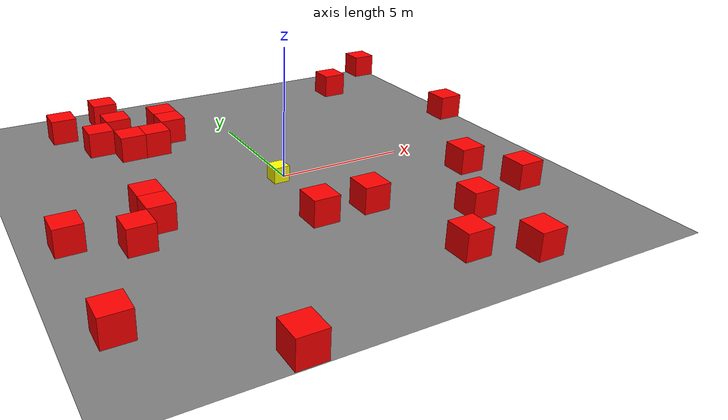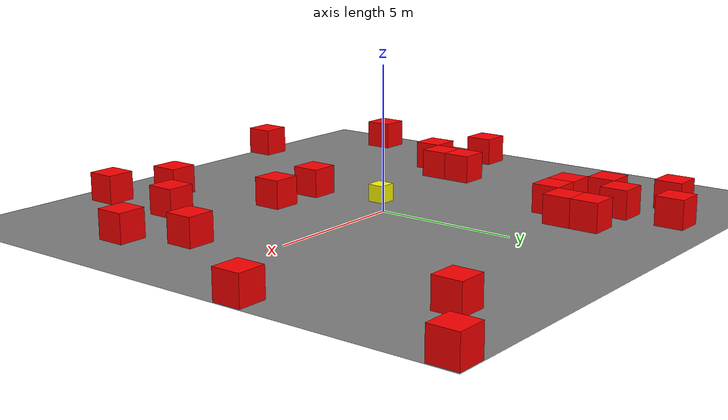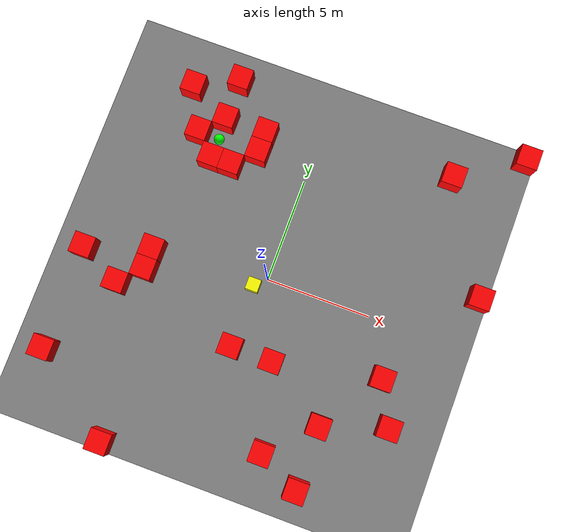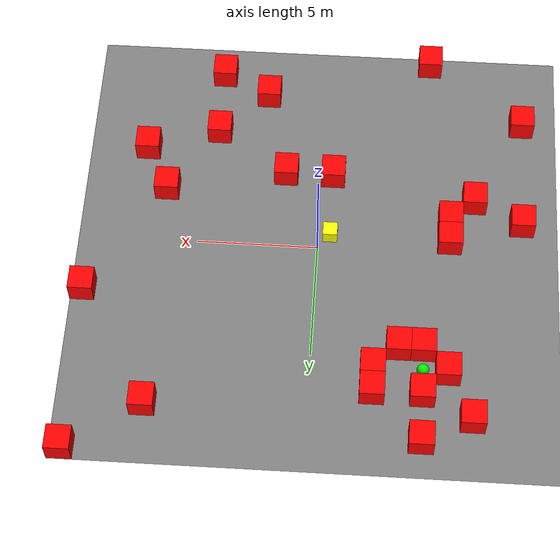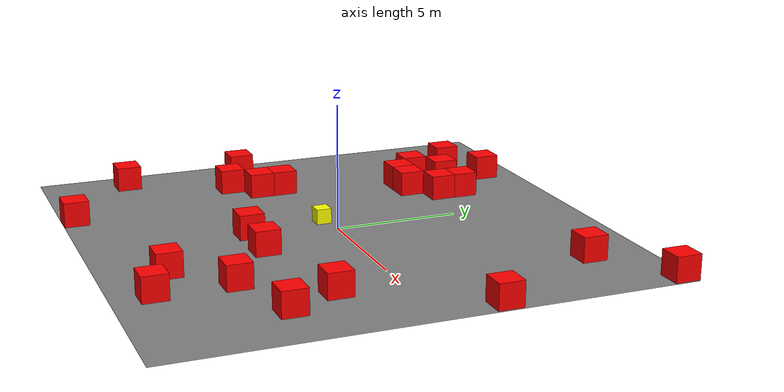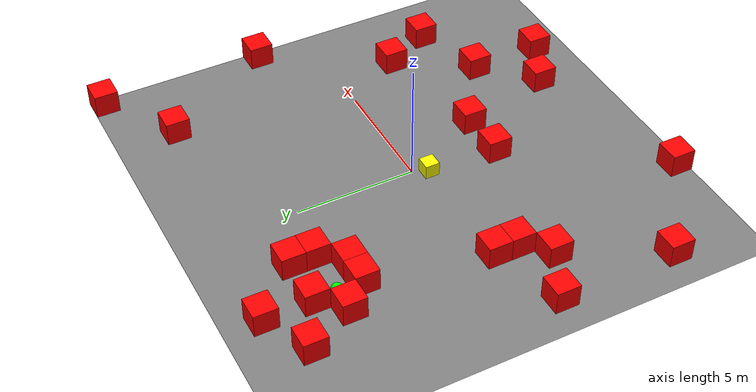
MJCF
<mujoco model="hybrid_20x20_wMin20_wMax40_deadD3_aaMin5_ttMin3_atMin10_seed7">
  <option timestep="0.01"/>

  <worldbody>
    <geom name="floor" type="plane" size="10.0 10.0 0.1" rgba="0.5 0.5 0.5 1"/>

    <body name="ob_0_19" pos="9.5000 9.5000 0.500">  <geom type="box" size="0.5000 0.5000 0.500"         rgba="1 0 0 1" contype="1" conaffinity="1"/></body>
        <body name="ob_1_5" pos="-4.5000 8.5000 0.500">  <geom type="box" size="0.5000 0.5000 0.500"         rgba="1 0 0 1" contype="1" conaffinity="1"/></body>
        <body name="ob_2_3" pos="-6.5000 7.5000 0.500">  <geom type="box" size="0.5000 0.5000 0.500"         rgba="1 0 0 1" contype="1" conaffinity="1"/></body>
        <body name="ob_2_16" pos="6.5000 7.5000 0.500">  <geom type="box" size="0.5000 0.5000 0.500"         rgba="1 0 0 1" contype="1" conaffinity="1"/></body>
        <body name="ob_3_5" pos="-4.5000 6.5000 0.500">  <geom type="box" size="0.5000 0.5000 0.500"         rgba="1 0 0 1" contype="1" conaffinity="1"/></body>
        <body name="ob_3_7" pos="-2.5000 6.5000 0.500">  <geom type="box" size="0.5000 0.5000 0.500"         rgba="1 0 0 1" contype="1" conaffinity="1"/></body>
        <body name="ob_4_4" pos="-5.5000 5.5000 0.500">  <geom type="box" size="0.5000 0.5000 0.500"         rgba="1 0 0 1" contype="1" conaffinity="1"/></body>
        <body name="ob_4_7" pos="-2.5000 5.5000 0.500">  <geom type="box" size="0.5000 0.5000 0.500"         rgba="1 0 0 1" contype="1" conaffinity="1"/></body>
        <body name="ob_5_5" pos="-4.5000 4.5000 0.500">  <geom type="box" size="0.5000 0.5000 0.500"         rgba="1 0 0 1" contype="1" conaffinity="1"/></body>
        <body name="ob_5_6" pos="-3.5000 4.5000 0.500">  <geom type="box" size="0.5000 0.5000 0.500"         rgba="1 0 0 1" contype="1" conaffinity="1"/></body>
        <body name="ob_7_19" pos="9.5000 2.5000 0.500">  <geom type="box" size="0.5000 0.5000 0.500"         rgba="1 0 0 1" contype="1" conaffinity="1"/></body>
        <body name="ob_10_4" pos="-5.5000 -0.5000 0.500">  <geom type="box" size="0.5000 0.5000 0.500"         rgba="1 0 0 1" contype="1" conaffinity="1"/></body>
        <body name="ob_11_1" pos="-8.5000 -1.5000 0.500">  <geom type="box" size="0.5000 0.5000 0.500"         rgba="1 0 0 1" contype="1" conaffinity="1"/></body>
        <body name="ob_11_4" pos="-5.5000 -1.5000 0.500">  <geom type="box" size="0.5000 0.5000 0.500"         rgba="1 0 0 1" contype="1" conaffinity="1"/></body>
        <body name="ob_12_3" pos="-6.5000 -2.5000 0.500">  <geom type="box" size="0.5000 0.5000 0.500"         rgba="1 0 0 1" contype="1" conaffinity="1"/></body>
        <body name="ob_12_16" pos="6.5000 -2.5000 0.500">  <geom type="box" size="0.5000 0.5000 0.500"         rgba="1 0 0 1" contype="1" conaffinity="1"/></body>
        <body name="ob_13_9" pos="-0.5000 -3.5000 0.500">  <geom type="box" size="0.5000 0.5000 0.500"         rgba="1 0 0 1" contype="1" conaffinity="1"/></body>
        <body name="ob_13_11" pos="1.5000 -3.5000 0.500">  <geom type="box" size="0.5000 0.5000 0.500"         rgba="1 0 0 1" contype="1" conaffinity="1"/></body>
        <body name="ob_14_17" pos="7.5000 -4.5000 0.500">  <geom type="box" size="0.5000 0.5000 0.500"         rgba="1 0 0 1" contype="1" conaffinity="1"/></body>
        <body name="ob_15_14" pos="4.5000 -5.5000 0.500">  <geom type="box" size="0.5000 0.5000 0.500"         rgba="1 0 0 1" contype="1" conaffinity="1"/></body>
        <body name="ob_16_1" pos="-8.5000 -6.5000 0.500">  <geom type="box" size="0.5000 0.5000 0.500"         rgba="1 0 0 1" contype="1" conaffinity="1"/></body>
        <body name="ob_17_12" pos="2.5000 -7.5000 0.500">  <geom type="box" size="0.5000 0.5000 0.500"         rgba="1 0 0 1" contype="1" conaffinity="1"/></body>
        <body name="ob_18_14" pos="4.5000 -8.5000 0.500">  <geom type="box" size="0.5000 0.5000 0.500"         rgba="1 0 0 1" contype="1" conaffinity="1"/></body>
        <body name="ob_19_5" pos="-4.5000 -9.5000 0.500">  <geom type="box" size="0.5000 0.5000 0.500"         rgba="1 0 0 1" contype="1" conaffinity="1"/></body>

            <body name="agent_0" pos="-0.5000 -0.5000 0.5">
                <joint name="agent_0_j1" type="slide" axis="1 0 0"/>
                <joint name="agent_0_j2" type="slide" axis="0 1 0"/>
                <geom  name="agent_geom_0" type="box" size="0.3 0.3 0.3" rgba="1 1 0 1"/>
            </body>

            <body name="target_0" pos="-4.5000 5.5000 0.25">
                <geom name="target_geom_0" type="sphere" size="0.25"
                      rgba="0 1 0 1" contype="0" conaffinity="0"/>
            </body>

  </worldbody>

</mujoco>
